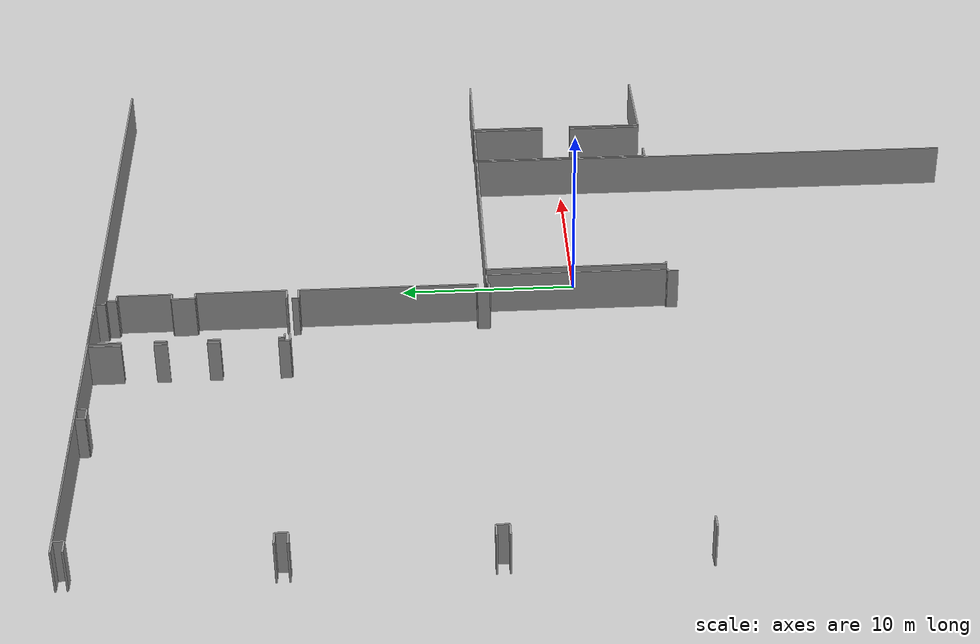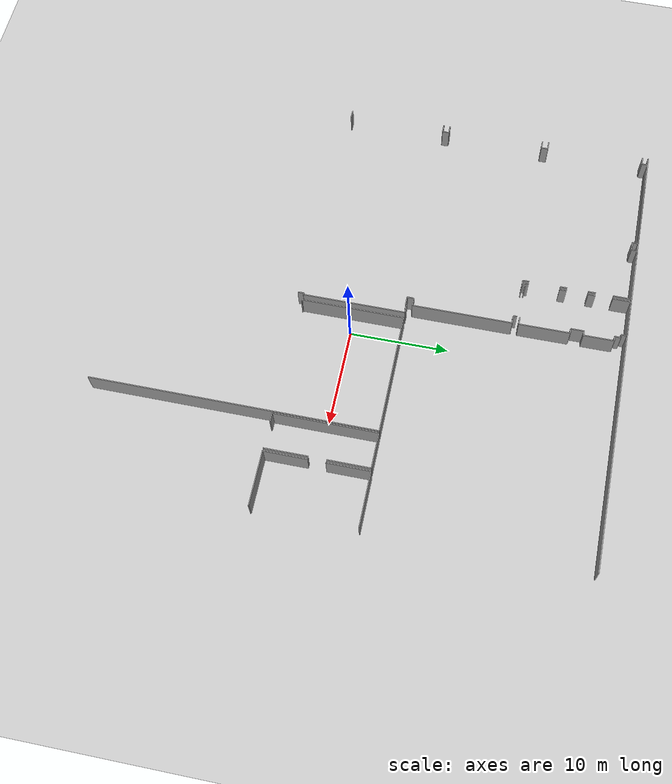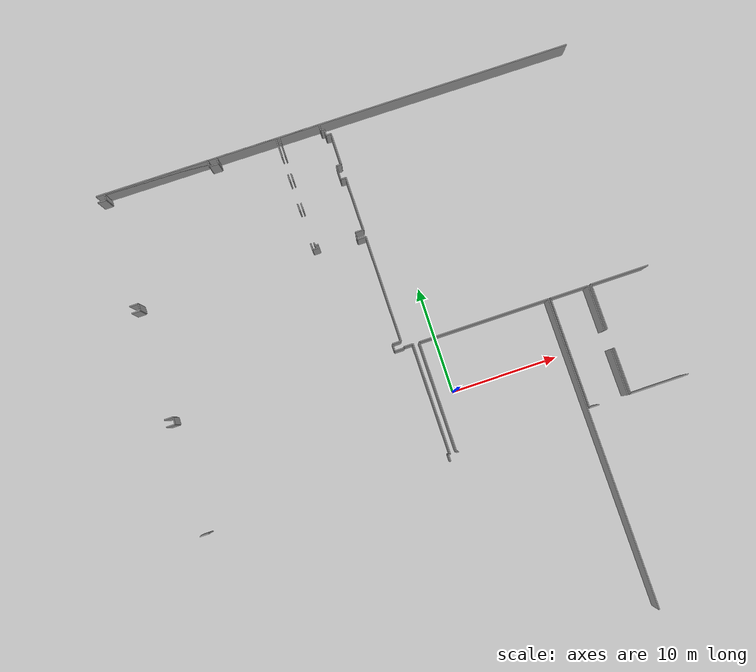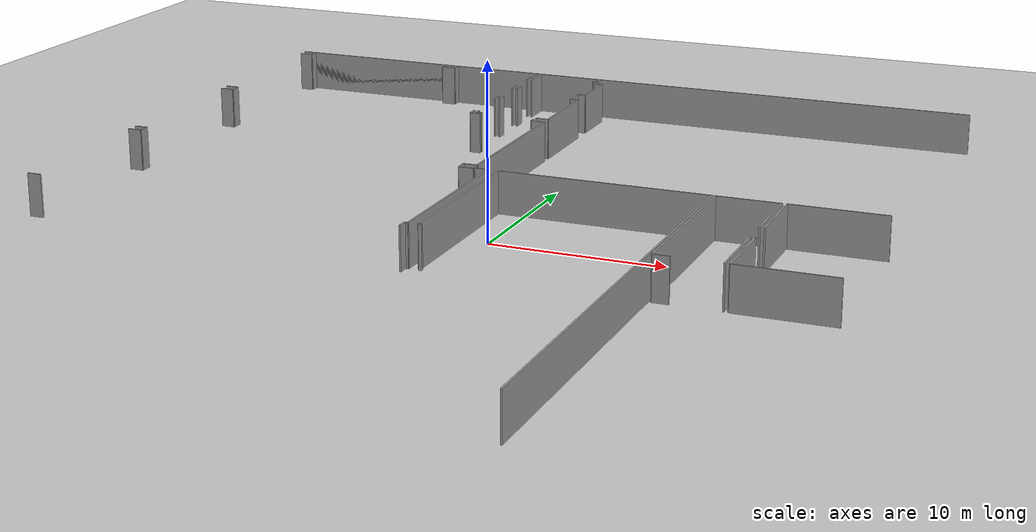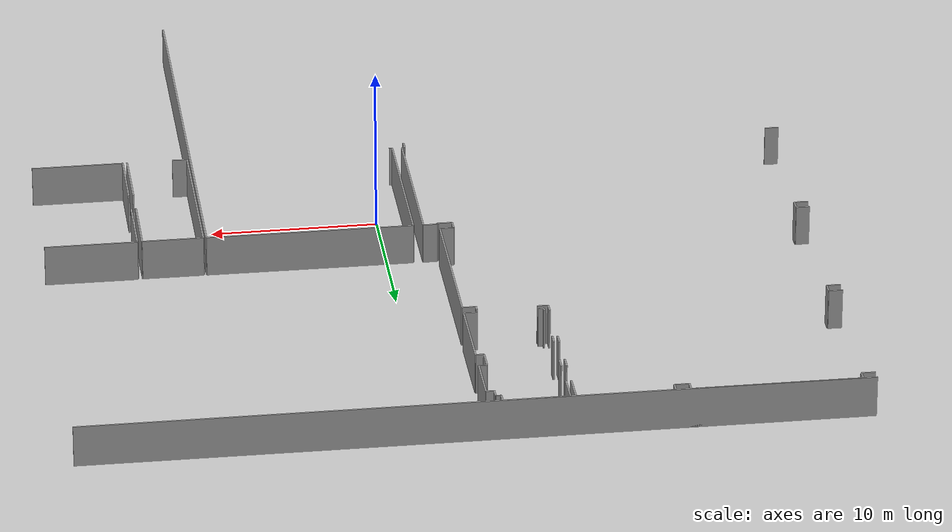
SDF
<sdf version="1.6">
 <world name="default">
  <model name="ground_plane">
   <static>1</static>
   <link name="link">
    <collision name="collision">
     <geometry><plane><normal>0 0 1</normal><size>100 100</size></plane></geometry>
     <surface><friction><ode><mu>100</mu><mu2>50</mu2></ode></friction></surface>
    </collision>
    <visual name="visual">
     <cast_shadows>0</cast_shadows>
     <geometry><plane><normal>0 0 1</normal><size>100 100</size></plane></geometry>
     <material>
      <script><uri>file://media/materials/scripts/gazebo.material</uri><name>Gazebo/Grey</name></script>
     </material>
    </visual>
   </link>
  </model>
  <model name="0510032323">
   <static>1</static>
   <link name="Wall_16">
    <collision name="Wall_16_Collision">
     <geometry><box><size>0.834660760409 0.1 2.5</size></box></geometry>
     <pose>0.417330380205 0 1.25 0 0 0</pose>
    </collision>
    <visual name="Wall_16_Visual">
     <pose>0.417330380205 0 1.25 0 0 0</pose>
     <geometry><box><size>0.834660760409 0.1 2.5</size></box></geometry>
     <material>
      <script><uri>file://media/materials/scripts/gazebo.material</uri><name>Gazebo/Grey</name></script>
      <ambient>1 1 1 1</ambient>
     </material>
    </visual>
    <pose>0.834660760409 -32.305280727 0 0 0 3.14159265359</pose>
   </link>
   <link name="Wall_17">
    <collision name="Wall_17_Collision">
     <geometry><box><size>0.822222081194 0.1 2.5</size></box></geometry>
     <pose>0.411111040597 0 1.25 0 0 0</pose>
    </collision>
    <visual name="Wall_17_Visual">
     <pose>0.411111040597 0 1.25 0 0 0</pose>
     <geometry><box><size>0.822222081194 0.1 2.5</size></box></geometry>
     <material>
      <script><uri>file://media/materials/scripts/gazebo.material</uri><name>Gazebo/Grey</name></script>
      <ambient>1 1 1 1</ambient>
     </material>
    </visual>
    <pose>0.0 -22.1937768526 0 0 0 0.0</pose>
   </link>
   <link name="Wall_18">
    <collision name="Wall_18_Collision">
     <geometry><box><size>0.681461925584 0.1 2.5</size></box></geometry>
     <pose>0.340730962792 0 1.25 0 0 0</pose>
    </collision>
    <visual name="Wall_18_Visual">
     <pose>0.340730962792 0 1.25 0 0 0</pose>
     <geometry><box><size>0.681461925584 0.1 2.5</size></box></geometry>
     <material>
      <script><uri>file://media/materials/scripts/gazebo.material</uri><name>Gazebo/Grey</name></script>
      <ambient>1 1 1 1</ambient>
     </material>
    </visual>
    <pose>0.822222081194 -22.1937768526 0 0 0 1.57079632679</pose>
   </link>
   <link name="Wall_19">
    <collision name="Wall_19_Collision">
     <geometry><box><size>0.807752597209 0.1 2.5</size></box></geometry>
     <pose>0.403876298604 0 1.25 0 0 0</pose>
    </collision>
    <visual name="Wall_19_Visual">
     <pose>0.403876298604 0 1.25 0 0 0</pose>
     <geometry><box><size>0.807752597209 0.1 2.5</size></box></geometry>
     <material>
      <script><uri>file://media/materials/scripts/gazebo.material</uri><name>Gazebo/Grey</name></script>
      <ambient>1 1 1 1</ambient>
     </material>
    </visual>
    <pose>0.822222081194 -21.512314927 0 0 0 3.14159265359</pose>
   </link>
   <link name="Wall_20">
    <collision name="Wall_20_Collision">
     <geometry><box><size>0.825395213647 0.1 2.5</size></box></geometry>
     <pose>0.412697606824 0 1.25 0 0 0</pose>
    </collision>
    <visual name="Wall_20_Visual">
     <pose>0.412697606824 0 1.25 0 0 0</pose>
     <geometry><box><size>0.825395213647 0.1 2.5</size></box></geometry>
     <material>
      <script><uri>file://media/materials/scripts/gazebo.material</uri><name>Gazebo/Grey</name></script>
      <ambient>1 1 1 1</ambient>
     </material>
    </visual>
    <pose>0.0144694839852 -11.3950994142 0 0 0 0.0</pose>
   </link>
   <link name="Wall_21">
    <collision name="Wall_21_Collision">
     <geometry><box><size>0.67498873538 0.1 2.5</size></box></geometry>
     <pose>0.33749436769 0 1.25 0 0 0</pose>
    </collision>
    <visual name="Wall_21_Visual">
     <pose>0.33749436769 0 1.25 0 0 0</pose>
     <geometry><box><size>0.67498873538 0.1 2.5</size></box></geometry>
     <material>
      <script><uri>file://media/materials/scripts/gazebo.material</uri><name>Gazebo/Grey</name></script>
      <ambient>1 1 1 1</ambient>
     </material>
    </visual>
    <pose>0.839864697632 -11.3950994142 0 0 0 1.57079632679</pose>
   </link>
   <link name="Wall_22">
    <collision name="Wall_22_Collision">
     <geometry><box><size>0.823110558281 0.1 2.5</size></box></geometry>
     <pose>0.41155527914 0 1.25 0 0 0</pose>
    </collision>
    <visual name="Wall_22_Visual">
     <pose>0.41155527914 0 1.25 0 0 0</pose>
     <geometry><box><size>0.823110558281 0.1 2.5</size></box></geometry>
     <material>
      <script><uri>file://media/materials/scripts/gazebo.material</uri><name>Gazebo/Grey</name></script>
      <ambient>1 1 1 1</ambient>
     </material>
    </visual>
    <pose>0.839864697632 -10.7201106789 0 0 0 3.14159265359</pose>
   </link>
   <link name="Wall_23">
    <collision name="Wall_23_Collision">
     <geometry><box><size>0.811814206749 0.1 2.5</size></box></geometry>
     <pose>0.405907103374 0 1.25 0 0 0</pose>
    </collision>
    <visual name="Wall_23_Visual">
     <pose>0.405907103374 0 1.25 0 0 0</pose>
     <geometry><box><size>0.811814206749 0.1 2.5</size></box></geometry>
     <material>
      <script><uri>file://media/materials/scripts/gazebo.material</uri><name>Gazebo/Grey</name></script>
      <ambient>1 1 1 1</ambient>
     </material>
    </visual>
    <pose>0.0167541393513 -0.599595108299 0 0 0 0.0</pose>
   </link>
   <link name="Wall_24">
    <collision name="Wall_24_Collision">
     <geometry><box><size>0.599595108299 0.1 2.5</size></box></geometry>
     <pose>0.29979755415 0 1.25 0 0 0</pose>
    </collision>
    <visual name="Wall_24_Visual">
     <pose>0.29979755415 0 1.25 0 0 0</pose>
     <geometry><box><size>0.599595108299 0.1 2.5</size></box></geometry>
     <material>
      <script><uri>file://media/materials/scripts/gazebo.material</uri><name>Gazebo/Grey</name></script>
      <ambient>1 1 1 1</ambient>
     </material>
    </visual>
    <pose>0.8285683461 -0.599595108299 0 0 0 1.57079632679</pose>
   </link>
   <link name="Wall_25">
    <collision name="Wall_25_Collision">
     <geometry><box><size>9.92885837041 0.1 2.5</size></box></geometry>
     <pose>4.9644291852 0 1.25 0 0 0</pose>
    </collision>
    <visual name="Wall_25_Visual">
     <pose>4.9644291852 0 1.25 0 0 0</pose>
     <geometry><box><size>9.92885837041 0.1 2.5</size></box></geometry>
     <material>
      <script><uri>file://media/materials/scripts/gazebo.material</uri><name>Gazebo/Grey</name></script>
      <ambient>1 1 1 1</ambient>
     </material>
    </visual>
    <pose>0.8285683461 -0.0 0 0 0 0.0</pose>
   </link>
   <link name="Wall_26">
    <collision name="Wall_26_Collision">
     <geometry><box><size>0.590456486835 0.1 2.5</size></box></geometry>
     <pose>0.295228243417 0 1.25 0 0 0</pose>
    </collision>
    <visual name="Wall_26_Visual">
     <pose>0.295228243417 0 1.25 0 0 0</pose>
     <geometry><box><size>0.590456486835 0.1 2.5</size></box></geometry>
     <material>
      <script><uri>file://media/materials/scripts/gazebo.material</uri><name>Gazebo/Grey</name></script>
      <ambient>1 1 1 1</ambient>
     </material>
    </visual>
    <pose>10.7574267165 -0.0 0 0 0 -1.57079632679</pose>
   </link>
   <link name="Wall_27">
    <collision name="Wall_27_Collision">
     <geometry><box><size>0.864995906659 0.1 2.5</size></box></geometry>
     <pose>0.43249795333 0 1.25 0 0 0</pose>
    </collision>
    <visual name="Wall_27_Visual">
     <pose>0.43249795333 0 1.25 0 0 0</pose>
     <geometry><box><size>0.864995906659 0.1 2.5</size></box></geometry>
     <material>
      <script><uri>file://media/materials/scripts/gazebo.material</uri><name>Gazebo/Grey</name></script>
      <ambient>1 1 1 1</ambient>
     </material>
    </visual>
    <pose>10.7574267165 -0.590456486835 0 0 0 0.0</pose>
   </link>
   <link name="Wall_28">
    <collision name="Wall_28_Collision">
     <geometry><box><size>0.587156429084 0.1 2.5</size></box></geometry>
     <pose>0.293578214542 0 1.25 0 0 0</pose>
    </collision>
    <visual name="Wall_28_Visual">
     <pose>0.293578214542 0 1.25 0 0 0</pose>
     <geometry><box><size>0.587156429084 0.1 2.5</size></box></geometry>
     <material>
      <script><uri>file://media/materials/scripts/gazebo.material</uri><name>Gazebo/Grey</name></script>
      <ambient>1 1 1 1</ambient>
     </material>
    </visual>
    <pose>11.6224226232 -0.590456486835 0 0 0 1.57079632679</pose>
   </link>
   <link name="Wall_29">
    <collision name="Wall_29_Collision">
     <geometry><box><size>5.74083123378 0.1 2.5</size></box></geometry>
     <pose>2.87041561689 0 1.25 0 0 0</pose>
    </collision>
    <visual name="Wall_29_Visual">
     <pose>2.87041561689 0 1.25 0 0 0</pose>
     <geometry><box><size>5.74083123378 0.1 2.5</size></box></geometry>
     <material>
      <script><uri>file://media/materials/scripts/gazebo.material</uri><name>Gazebo/Grey</name></script>
      <ambient>1 1 1 1</ambient>
     </material>
    </visual>
    <pose>11.6224226232 -0.00330005775101 0 0 0 0.0</pose>
   </link>
   <link name="Wall_30">
    <collision name="Wall_30_Collision">
     <geometry><box><size>1.83533981075 0.1 2.5</size></box></geometry>
     <pose>0.917669905377 0 1.25 0 0 0</pose>
    </collision>
    <visual name="Wall_30_Visual">
     <pose>0.917669905377 0 1.25 0 0 0</pose>
     <geometry><box><size>1.83533981075 0.1 2.5</size></box></geometry>
     <material>
      <script><uri>file://media/materials/scripts/gazebo.material</uri><name>Gazebo/Grey</name></script>
      <ambient>1 1 1 1</ambient>
     </material>
    </visual>
    <pose>17.3632538569 -0.00330005775101 0 0 0 -1.57079632679</pose>
   </link>
   <link name="Wall_31">
    <collision name="Wall_31_Collision">
     <geometry><box><size>0.759394058627 0.1 2.5</size></box></geometry>
     <pose>0.379697029313 0 1.25 0 0 0</pose>
    </collision>
    <visual name="Wall_31_Visual">
     <pose>0.379697029313 0 1.25 0 0 0</pose>
     <geometry><box><size>0.759394058627 0.1 2.5</size></box></geometry>
     <material>
      <script><uri>file://media/materials/scripts/gazebo.material</uri><name>Gazebo/Grey</name></script>
      <ambient>1 1 1 1</ambient>
     </material>
    </visual>
    <pose>17.3632538569 -3.61330938676 0 0 0 -1.57079632679</pose>
   </link>
   <link name="Wall_32">
    <collision name="Wall_32_Collision">
     <geometry><box><size>0.706466209313 0.1 2.5</size></box></geometry>
     <pose>0.353233104656 0 1.25 0 0 0</pose>
    </collision>
    <visual name="Wall_32_Visual">
     <pose>0.353233104656 0 1.25 0 0 0</pose>
     <geometry><box><size>0.706466209313 0.1 2.5</size></box></geometry>
     <material>
      <script><uri>file://media/materials/scripts/gazebo.material</uri><name>Gazebo/Grey</name></script>
      <ambient>1 1 1 1</ambient>
     </material>
    </visual>
    <pose>17.3632538569 -6.51685250646 0 0 0 -1.57079632679</pose>
   </link>
   <link name="Wall_33">
    <collision name="Wall_33_Collision">
     <geometry><box><size>0.624726317326 0.1 2.5</size></box></geometry>
     <pose>0.312363158663 0 1.25 0 0 0</pose>
    </collision>
    <visual name="Wall_33_Visual">
     <pose>0.312363158663 0 1.25 0 0 0</pose>
     <geometry><box><size>0.624726317326 0.1 2.5</size></box></geometry>
     <material>
      <script><uri>file://media/materials/scripts/gazebo.material</uri><name>Gazebo/Grey</name></script>
      <ambient>1 1 1 1</ambient>
     </material>
    </visual>
    <pose>17.3632538569 -10.3932780362 0 0 0 -1.57079632679</pose>
   </link>
   <link name="Wall_34">
    <collision name="Wall_34_Collision">
     <geometry><box><size>0.654934538278 0.1 2.5</size></box></geometry>
     <pose>0.327467269139 0 1.25 0 0 0</pose>
    </collision>
    <visual name="Wall_34_Visual">
     <pose>0.327467269139 0 1.25 0 0 0</pose>
     <geometry><box><size>0.654934538278 0.1 2.5</size></box></geometry>
     <material>
      <script><uri>file://media/materials/scripts/gazebo.material</uri><name>Gazebo/Grey</name></script>
      <ambient>1 1 1 1</ambient>
     </material>
    </visual>
    <pose>17.3632538569 -11.0180043535 0 0 0 0.0</pose>
   </link>
   <link name="Wall_35">
    <collision name="Wall_35_Collision">
     <geometry><box><size>0.370748795796 0.1 2.5</size></box></geometry>
     <pose>0.185374397898 0 1.25 0 0 0</pose>
    </collision>
    <visual name="Wall_35_Visual">
     <pose>0.185374397898 0 1.25 0 0 0</pose>
     <geometry><box><size>0.370748795796 0.1 2.5</size></box></geometry>
     <material>
      <script><uri>file://media/materials/scripts/gazebo.material</uri><name>Gazebo/Grey</name></script>
      <ambient>1 1 1 1</ambient>
     </material>
    </visual>
    <pose>21.5529310224 -11.0180043535 0 0 0 -1.57079632679</pose>
   </link>
   <link name="Wall_36">
    <collision name="Wall_36_Collision">
     <geometry><box><size>0.812829609134 0.1 2.5</size></box></geometry>
     <pose>0.406414804567 0 1.25 0 0 0</pose>
    </collision>
    <visual name="Wall_36_Visual">
     <pose>0.406414804567 0 1.25 0 0 0</pose>
     <geometry><box><size>0.812829609134 0.1 2.5</size></box></geometry>
     <material>
      <script><uri>file://media/materials/scripts/gazebo.material</uri><name>Gazebo/Grey</name></script>
      <ambient>1 1 1 1</ambient>
     </material>
    </visual>
    <pose>21.5529310224 -11.3887531493 0 0 0 0.0</pose>
   </link>
   <link name="Wall_37">
    <collision name="Wall_37_Collision">
     <geometry><box><size>10.1173424381 0.1 2.5</size></box></geometry>
     <pose>5.05867121905 0 1.25 0 0 0</pose>
    </collision>
    <visual name="Wall_37_Visual">
     <pose>5.05867121905 0 1.25 0 0 0</pose>
     <geometry><box><size>10.1173424381 0.1 2.5</size></box></geometry>
     <material>
      <script><uri>file://media/materials/scripts/gazebo.material</uri><name>Gazebo/Grey</name></script>
      <ambient>1 1 1 1</ambient>
     </material>
    </visual>
    <pose>22.3657606316 -11.3887531493 0 0 0 -1.57079632679</pose>
   </link>
   <link name="Wall_38">
    <collision name="Wall_38_Collision">
     <geometry><box><size>0.825902914839 0.1 2.5</size></box></geometry>
     <pose>0.41295145742 0 1.25 0 0 0</pose>
    </collision>
    <visual name="Wall_38_Visual">
     <pose>0.41295145742 0 1.25 0 0 0</pose>
     <geometry><box><size>0.825902914839 0.1 2.5</size></box></geometry>
     <material>
      <script><uri>file://media/materials/scripts/gazebo.material</uri><name>Gazebo/Grey</name></script>
      <ambient>1 1 1 1</ambient>
     </material>
    </visual>
    <pose>22.3657606316 -21.5060955874 0 0 0 3.14159265359</pose>
   </link>
   <link name="Wall_39">
    <collision name="Wall_39_Collision">
     <geometry><box><size>0.676004137765 0.1 2.5</size></box></geometry>
     <pose>0.338002068882 0 1.25 0 0 0</pose>
    </collision>
    <visual name="Wall_39_Visual">
     <pose>0.338002068882 0 1.25 0 0 0</pose>
     <geometry><box><size>0.676004137765 0.1 2.5</size></box></geometry>
     <material>
      <script><uri>file://media/materials/scripts/gazebo.material</uri><name>Gazebo/Grey</name></script>
      <ambient>1 1 1 1</ambient>
     </material>
    </visual>
    <pose>21.5398577167 -21.5060955874 0 0 0 -1.57079632679</pose>
   </link>
   <link name="Wall_40">
    <collision name="Wall_40_Collision">
     <geometry><box><size>0.893046397543 0.1 2.5</size></box></geometry>
     <pose>0.446523198771 0 1.25 0 0 0</pose>
    </collision>
    <visual name="Wall_40_Visual">
     <pose>0.446523198771 0 1.25 0 0 0</pose>
     <geometry><box><size>0.893046397543 0.1 2.5</size></box></geometry>
     <material>
      <script><uri>file://media/materials/scripts/gazebo.material</uri><name>Gazebo/Grey</name></script>
      <ambient>1 1 1 1</ambient>
     </material>
    </visual>
    <pose>21.5398577167 -22.1820997252 0 0 0 0.0</pose>
   </link>
   <link name="Wall_41">
    <collision name="Wall_41_Collision">
     <geometry><box><size>0.100144060213 0.1 2.5</size></box></geometry>
     <pose>0.0500720301067 0 1.25 0 0 0</pose>
    </collision>
    <visual name="Wall_41_Visual">
     <pose>0.0500720301067 0 1.25 0 0 0</pose>
     <geometry><box><size>0.100144060213 0.1 2.5</size></box></geometry>
     <material>
      <script><uri>file://media/materials/scripts/gazebo.material</uri><name>Gazebo/Grey</name></script>
      <ambient>1 1 1 1</ambient>
     </material>
    </visual>
    <pose>22.4329041143 -22.1820997252 0 0 0 1.57079632679</pose>
   </link>
   <link name="Wall_42">
    <collision name="Wall_42_Collision">
     <geometry><box><size>0.85953811884 0.1 2.5</size></box></geometry>
     <pose>0.42976905942 0 1.25 0 0 0</pose>
    </collision>
    <visual name="Wall_42_Visual">
     <pose>0.42976905942 0 1.25 0 0 0</pose>
     <geometry><box><size>0.85953811884 0.1 2.5</size></box></geometry>
     <material>
      <script><uri>file://media/materials/scripts/gazebo.material</uri><name>Gazebo/Grey</name></script>
      <ambient>1 1 1 1</ambient>
     </material>
    </visual>
    <pose>22.4329041143 -22.081955665 0 0 0 0.0</pose>
   </link>
   <link name="Wall_43">
    <collision name="Wall_43_Collision">
     <geometry><box><size>10.4068590431 0.1 2.5</size></box></geometry>
     <pose>5.20342952156 0 1.25 0 0 0</pose>
    </collision>
    <visual name="Wall_43_Visual">
     <pose>5.20342952156 0 1.25 0 0 0</pose>
     <geometry><box><size>10.4068590431 0.1 2.5</size></box></geometry>
     <material>
      <script><uri>file://media/materials/scripts/gazebo.material</uri><name>Gazebo/Grey</name></script>
      <ambient>1 1 1 1</ambient>
     </material>
    </visual>
    <pose>23.2924422331 -22.081955665 0 0 0 -1.57079632679</pose>
   </link>
   <link name="Wall_44">
    <collision name="Wall_44_Collision">
     <geometry><box><size>0.175283836698 0.1 2.5</size></box></geometry>
     <pose>0.087641918349 0 1.25 0 0 0</pose>
    </collision>
    <visual name="Wall_44_Visual">
     <pose>0.087641918349 0 1.25 0 0 0</pose>
     <geometry><box><size>0.175283836698 0.1 2.5</size></box></geometry>
     <material>
      <script><uri>file://media/materials/scripts/gazebo.material</uri><name>Gazebo/Grey</name></script>
      <ambient>1 1 1 1</ambient>
     </material>
    </visual>
    <pose>23.2924422331 -32.4888147081 0 0 0 3.14159265359</pose>
   </link>
   <link name="Wall_45">
    <collision name="Wall_45_Collision">
     <geometry><box><size>0.625995570307 0.1 2.5</size></box></geometry>
     <pose>0.312997785154 0 1.25 0 0 0</pose>
    </collision>
    <visual name="Wall_45_Visual">
     <pose>0.312997785154 0 1.25 0 0 0</pose>
     <geometry><box><size>0.625995570307 0.1 2.5</size></box></geometry>
     <material>
      <script><uri>file://media/materials/scripts/gazebo.material</uri><name>Gazebo/Grey</name></script>
      <ambient>1 1 1 1</ambient>
     </material>
    </visual>
    <pose>23.1171583964 -32.4888147081 0 0 0 -1.57079632679</pose>
   </link>
   <link name="Wall_52">
    <collision name="Wall_52_Collision">
     <geometry><box><size>0.814098862115 0.1 2.5</size></box></geometry>
     <pose>0.407049431057 0 1.25 0 0 0</pose>
    </collision>
    <visual name="Wall_52_Visual">
     <pose>0.407049431057 0 1.25 0 0 0</pose>
     <geometry><box><size>0.814098862115 0.1 2.5</size></box></geometry>
     <material>
      <script><uri>file://media/materials/scripts/gazebo.material</uri><name>Gazebo/Grey</name></script>
      <ambient>1 1 1 1</ambient>
     </material>
    </visual>
    <pose>22.3661414075 -10.7152875175 0 0 0 3.14159265359</pose>
   </link>
   <link name="Wall_53">
    <collision name="Wall_53_Collision">
     <geometry><box><size>0.328228820927 0.1 2.5</size></box></geometry>
     <pose>0.164114410464 0 1.25 0 0 0</pose>
    </collision>
    <visual name="Wall_53_Visual">
     <pose>0.164114410464 0 1.25 0 0 0</pose>
     <geometry><box><size>0.328228820927 0.1 2.5</size></box></geometry>
     <material>
      <script><uri>file://media/materials/scripts/gazebo.material</uri><name>Gazebo/Grey</name></script>
      <ambient>1 1 1 1</ambient>
     </material>
    </visual>
    <pose>17.9992765258 -10.7152875175 0 0 0 3.14159265359</pose>
   </link>
   <link name="Wall_54">
    <collision name="Wall_54_Collision">
     <geometry><box><size>0.315663216414 0.1 2.5</size></box></geometry>
     <pose>0.157831608207 0 1.25 0 0 0</pose>
    </collision>
    <visual name="Wall_54_Visual">
     <pose>0.157831608207 0 1.25 0 0 0</pose>
     <geometry><box><size>0.315663216414 0.1 2.5</size></box></geometry>
     <material>
      <script><uri>file://media/materials/scripts/gazebo.material</uri><name>Gazebo/Grey</name></script>
      <ambient>1 1 1 1</ambient>
     </material>
    </visual>
    <pose>17.6710477049 -10.7152875175 0 0 0 1.57079632679</pose>
   </link>
   <link name="Wall_55">
    <collision name="Wall_55_Collision">
     <geometry><box><size>0.706212358716 0.1 2.5</size></box></geometry>
     <pose>0.353106179358 0 1.25 0 0 0</pose>
    </collision>
    <visual name="Wall_55_Visual">
     <pose>0.353106179358 0 1.25 0 0 0</pose>
     <geometry><box><size>0.706212358716 0.1 2.5</size></box></geometry>
     <material>
      <script><uri>file://media/materials/scripts/gazebo.material</uri><name>Gazebo/Grey</name></script>
      <ambient>1 1 1 1</ambient>
     </material>
    </visual>
    <pose>17.6710477049 -7.23778819976 0 0 0 1.57079632679</pose>
   </link>
   <link name="Wall_56">
    <collision name="Wall_56_Collision">
     <geometry><box><size>0.731978194234 0.1 2.5</size></box></geometry>
     <pose>0.365989097117 0 1.25 0 0 0</pose>
    </collision>
    <visual name="Wall_56_Visual">
     <pose>0.365989097117 0 1.25 0 0 0</pose>
     <geometry><box><size>0.731978194234 0.1 2.5</size></box></geometry>
     <material>
      <script><uri>file://media/materials/scripts/gazebo.material</uri><name>Gazebo/Grey</name></script>
      <ambient>1 1 1 1</ambient>
     </material>
    </visual>
    <pose>17.6710477049 -4.33526048244 0 0 0 1.57079632679</pose>
   </link>
   <link name="Wall_57">
    <collision name="Wall_57_Collision">
     <geometry><box><size>1.82353575803 0.1 2.5</size></box></geometry>
     <pose>0.911767879015 0 1.25 0 0 0</pose>
    </collision>
    <visual name="Wall_57_Visual">
     <pose>0.911767879015 0 1.25 0 0 0</pose>
     <geometry><box><size>1.82353575803 0.1 2.5</size></box></geometry>
     <material>
      <script><uri>file://media/materials/scripts/gazebo.material</uri><name>Gazebo/Grey</name></script>
      <ambient>1 1 1 1</ambient>
     </material>
    </visual>
    <pose>17.6710477049 -1.83698983963 0 0 0 1.57079632679</pose>
   </link>
   <link name="Wall_58">
    <collision name="Wall_58_Collision">
     <geometry><box><size>3.88099484049 0.1 2.5</size></box></geometry>
     <pose>1.94049742024 0 1.25 0 0 0</pose>
    </collision>
    <visual name="Wall_58_Visual">
     <pose>1.94049742024 0 1.25 0 0 0</pose>
     <geometry><box><size>3.88099484049 0.1 2.5</size></box></geometry>
     <material>
      <script><uri>file://media/materials/scripts/gazebo.material</uri><name>Gazebo/Grey</name></script>
      <ambient>1 1 1 1</ambient>
     </material>
    </visual>
    <pose>17.6710477049 -0.0134540816003 0 0 0 0.0</pose>
   </link>
   <link name="Wall_59">
    <collision name="Wall_59_Collision">
     <geometry><box><size>0.573448496887 0.1 2.5</size></box></geometry>
     <pose>0.286724248444 0 1.25 0 0 0</pose>
    </collision>
    <visual name="Wall_59_Visual">
     <pose>0.286724248444 0 1.25 0 0 0</pose>
     <geometry><box><size>0.573448496887 0.1 2.5</size></box></geometry>
     <material>
      <script><uri>file://media/materials/scripts/gazebo.material</uri><name>Gazebo/Grey</name></script>
      <ambient>1 1 1 1</ambient>
     </material>
    </visual>
    <pose>21.5520425454 -0.0134540816003 0 0 0 -1.57079632679</pose>
   </link>
   <link name="Wall_60">
    <collision name="Wall_60_Collision">
     <geometry><box><size>0.315536291116 0.1 2.5</size></box></geometry>
     <pose>0.157768145558 0 1.25 0 0 0</pose>
    </collision>
    <visual name="Wall_60_Visual">
     <pose>0.157768145558 0 1.25 0 0 0</pose>
     <geometry><box><size>0.315536291116 0.1 2.5</size></box></geometry>
     <material>
      <script><uri>file://media/materials/scripts/gazebo.material</uri><name>Gazebo/Grey</name></script>
      <ambient>1 1 1 1</ambient>
     </material>
    </visual>
    <pose>21.5520425454 -0.586902578487 0 0 0 0.0</pose>
   </link>
   <link name="Wall_61">
    <collision name="Wall_61_Collision">
     <geometry><box><size>0.591344963921 0.1 2.5</size></box></geometry>
     <pose>0.295672481961 0 1.25 0 0 0</pose>
    </collision>
    <visual name="Wall_61_Visual">
     <pose>0.295672481961 0 1.25 0 0 0</pose>
     <geometry><box><size>0.591344963921 0.1 2.5</size></box></geometry>
     <material>
      <script><uri>file://media/materials/scripts/gazebo.material</uri><name>Gazebo/Grey</name></script>
      <ambient>1 1 1 1</ambient>
     </material>
    </visual>
    <pose>21.8675788365 -0.586902578487 0 0 0 -1.57079632679</pose>
   </link>
   <link name="Wall_62">
    <collision name="Wall_62_Collision">
     <geometry><box><size>0.476350643829 0.1 2.5</size></box></geometry>
     <pose>0.238175321914 0 1.25 0 0 0</pose>
    </collision>
    <visual name="Wall_62_Visual">
     <pose>0.238175321914 0 1.25 0 0 0</pose>
     <geometry><box><size>0.476350643829 0.1 2.5</size></box></geometry>
     <material>
      <script><uri>file://media/materials/scripts/gazebo.material</uri><name>Gazebo/Grey</name></script>
      <ambient>1 1 1 1</ambient>
     </material>
    </visual>
    <pose>21.8675788365 -1.17824754241 0 0 0 0.0</pose>
   </link>
   <link name="Wall_63">
    <collision name="Wall_63_Collision">
     <geometry><box><size>3.06930755904 0.1 2.5</size></box></geometry>
     <pose>1.53465377952 0 1.25 0 0 0</pose>
    </collision>
    <visual name="Wall_63_Visual">
     <pose>1.53465377952 0 1.25 0 0 0</pose>
     <geometry><box><size>3.06930755904 0.1 2.5</size></box></geometry>
     <material>
      <script><uri>file://media/materials/scripts/gazebo.material</uri><name>Gazebo/Grey</name></script>
      <ambient>1 1 1 1</ambient>
     </material>
    </visual>
    <pose>22.3439294803 -1.17824754241 0 0 0 -1.57079632679</pose>
   </link>
   <link name="Wall_64">
    <collision name="Wall_64_Collision">
     <geometry><box><size>0.482189207542 0.1 2.5</size></box></geometry>
     <pose>0.241094603771 0 1.25 0 0 0</pose>
    </collision>
    <visual name="Wall_64_Visual">
     <pose>0.241094603771 0 1.25 0 0 0</pose>
     <geometry><box><size>0.482189207542 0.1 2.5</size></box></geometry>
     <material>
      <script><uri>file://media/materials/scripts/gazebo.material</uri><name>Gazebo/Grey</name></script>
      <ambient>1 1 1 1</ambient>
     </material>
    </visual>
    <pose>22.3439294803 -4.24755510145 0 0 0 3.14159265359</pose>
   </link>
   <link name="Wall_65">
    <collision name="Wall_65_Collision">
     <geometry><box><size>1.31989617511 0.1 2.5</size></box></geometry>
     <pose>0.659948087553 0 1.25 0 0 0</pose>
    </collision>
    <visual name="Wall_65_Visual">
     <pose>0.659948087553 0 1.25 0 0 0</pose>
     <geometry><box><size>1.31989617511 0.1 2.5</size></box></geometry>
     <material>
      <script><uri>file://media/materials/scripts/gazebo.material</uri><name>Gazebo/Grey</name></script>
      <ambient>1 1 1 1</ambient>
     </material>
    </visual>
    <pose>21.8617402728 -4.24755510145 0 0 0 -1.57079632679</pose>
   </link>
   <link name="Wall_66">
    <collision name="Wall_66_Collision">
     <geometry><box><size>0.48840854715 0.1 2.5</size></box></geometry>
     <pose>0.244204273575 0 1.25 0 0 0</pose>
    </collision>
    <visual name="Wall_66_Visual">
     <pose>0.244204273575 0 1.25 0 0 0</pose>
     <geometry><box><size>0.48840854715 0.1 2.5</size></box></geometry>
     <material>
      <script><uri>file://media/materials/scripts/gazebo.material</uri><name>Gazebo/Grey</name></script>
      <ambient>1 1 1 1</ambient>
     </material>
    </visual>
    <pose>21.8617402728 -5.56745127655 0 0 0 0.0</pose>
   </link>
   <link name="Wall_67">
    <collision name="Wall_67_Collision">
     <geometry><box><size>5.1478610827 0.1 2.5</size></box></geometry>
     <pose>2.57393054135 0 1.25 0 0 0</pose>
    </collision>
    <visual name="Wall_67_Visual">
     <pose>2.57393054135 0 1.25 0 0 0</pose>
     <geometry><box><size>5.1478610827 0.1 2.5</size></box></geometry>
     <material>
      <script><uri>file://media/materials/scripts/gazebo.material</uri><name>Gazebo/Grey</name></script>
      <ambient>1 1 1 1</ambient>
     </material>
    </visual>
    <pose>22.3501488199 -5.56745127655 0 0 0 -1.56768967473</pose>
   </link>
   <link name="Wall_68">
    <collision name="Wall_68_Collision">
     <geometry><box><size>5.52620055466 0.1 2.5</size></box></geometry>
     <pose>2.76310027733 0 1.25 0 0 0</pose>
    </collision>
    <visual name="Wall_68_Visual">
     <pose>2.76310027733 0 1.25 0 0 0</pose>
     <geometry><box><size>5.52620055466 0.1 2.5</size></box></geometry>
     <material>
      <script><uri>file://media/materials/scripts/gazebo.material</uri><name>Gazebo/Grey</name></script>
      <ambient>1 1 1 1</ambient>
     </material>
    </visual>
    <pose>45.9020263624 -22.0586014101 0 0 0 3.14159265359</pose>
   </link>
   <link name="Wall_69">
    <collision name="Wall_69_Collision">
     <geometry><box><size>4.36305712273 0.1 2.5</size></box></geometry>
     <pose>2.18152856137 0 1.25 0 0 0</pose>
    </collision>
    <visual name="Wall_69_Visual">
     <pose>2.18152856137 0 1.25 0 0 0</pose>
     <geometry><box><size>4.36305712273 0.1 2.5</size></box></geometry>
     <material>
      <script><uri>file://media/materials/scripts/gazebo.material</uri><name>Gazebo/Grey</name></script>
      <ambient>1 1 1 1</ambient>
     </material>
    </visual>
    <pose>40.3758258077 -22.0586014101 0 0 0 -1.57079632679</pose>
   </link>
   <link name="Wall_70">
    <collision name="Wall_70_Collision">
     <geometry><box><size>4.36686488167 0.1 2.5</size></box></geometry>
     <pose>2.18343244084 0 1.25 0 0 0</pose>
    </collision>
    <visual name="Wall_70_Visual">
     <pose>2.18343244084 0 1.25 0 0 0</pose>
     <geometry><box><size>4.36686488167 0.1 2.5</size></box></geometry>
     <material>
      <script><uri>file://media/materials/scripts/gazebo.material</uri><name>Gazebo/Grey</name></script>
      <ambient>1 1 1 1</ambient>
     </material>
    </visual>
    <pose>40.3758258077 -28.1634543989 0 0 0 -1.57079632679</pose>
   </link>
   <link name="Wall_71">
    <collision name="Wall_71_Collision">
     <geometry><box><size>5.52620919679 0.1 2.5</size></box></geometry>
     <pose>2.7631045984 0 1.25 0 0 0</pose>
    </collision>
    <visual name="Wall_71_Visual">
     <pose>2.7631045984 0 1.25 0 0 0</pose>
     <geometry><box><size>5.52620919679 0.1 2.5</size></box></geometry>
     <material>
      <script><uri>file://media/materials/scripts/gazebo.material</uri><name>Gazebo/Grey</name></script>
      <ambient>1 1 1 1</ambient>
     </material>
    </visual>
    <pose>40.3758258077 -32.5303192806 0 0 0 0.00176852752068</pose>
   </link>
   <link name="Wall_73">
    <collision name="Wall_73_Collision">
     <geometry><box><size>0.9161468018 0.1 2.5</size></box></geometry>
     <pose>0.4580734009 0 1.25 0 0 0</pose>
    </collision>
    <visual name="Wall_73_Visual">
     <pose>0.4580734009 0 1.25 0 0 0</pose>
     <geometry><box><size>0.9161468018 0.1 2.5</size></box></geometry>
     <material>
      <script><uri>file://media/materials/scripts/gazebo.material</uri><name>Gazebo/Grey</name></script>
      <ambient>1 1 1 1</ambient>
     </material>
    </visual>
    <pose>37.3622384546 -32.5487234488 0 0 0 3.14159265359</pose>
   </link>
   <link name="Wall_74">
    <collision name="Wall_74_Collision">
     <geometry><box><size>10.4558522082 0.1 2.5</size></box></geometry>
     <pose>5.22792610409 0 1.25 0 0 0</pose>
    </collision>
    <visual name="Wall_74_Visual">
     <pose>5.22792610409 0 1.25 0 0 0</pose>
     <geometry><box><size>10.4558522082 0.1 2.5</size></box></geometry>
     <material>
      <script><uri>file://media/materials/scripts/gazebo.material</uri><name>Gazebo/Grey</name></script>
      <ambient>1 1 1 1</ambient>
     </material>
    </visual>
    <pose>36.4460916528 -32.5487234488 0 0 0 1.57079632679</pose>
   </link>
   <link name="Wall_75">
    <collision name="Wall_75_Collision">
     <geometry><box><size>3.65227545328 0.1 2.5</size></box></geometry>
     <pose>1.82613772664 0 1.25 0 0 0</pose>
    </collision>
    <visual name="Wall_75_Visual">
     <pose>1.82613772664 0 1.25 0 0 0</pose>
     <geometry><box><size>3.65227545328 0.1 2.5</size></box></geometry>
     <material>
      <script><uri>file://media/materials/scripts/gazebo.material</uri><name>Gazebo/Grey</name></script>
      <ambient>1 1 1 1</ambient>
     </material>
    </visual>
    <pose>36.4460916528 -22.0928712406 0 0 0 0.0</pose>
   </link>
   <link name="Wall_76">
    <collision name="Wall_76_Collision">
     <geometry><box><size>4.32510645859 0.1 2.5</size></box></geometry>
     <pose>2.1625532293 0 1.25 0 0 0</pose>
    </collision>
    <visual name="Wall_76_Visual">
     <pose>2.1625532293 0 1.25 0 0 0</pose>
     <geometry><box><size>4.32510645859 0.1 2.5</size></box></geometry>
     <material>
      <script><uri>file://media/materials/scripts/gazebo.material</uri><name>Gazebo/Grey</name></script>
      <ambient>1 1 1 1</ambient>
     </material>
    </visual>
    <pose>40.098367106 -22.0928712406 0 0 0 -1.57079632679</pose>
   </link>
   <link name="Wall_77">
    <collision name="Wall_77_Collision">
     <geometry><box><size>4.37450349758 0.1 2.5</size></box></geometry>
     <pose>2.18725174879 0 1.25 0 0 0</pose>
    </collision>
    <visual name="Wall_77_Visual">
     <pose>2.18725174879 0 1.25 0 0 0</pose>
     <geometry><box><size>4.37450349758 0.1 2.5</size></box></geometry>
     <material>
      <script><uri>file://media/materials/scripts/gazebo.material</uri><name>Gazebo/Grey</name></script>
      <ambient>1 1 1 1</ambient>
     </material>
    </visual>
    <pose>40.098367106 -28.1742430493 0 0 0 -1.56754666465</pose>
   </link>
   <link name="Wall_110">
    <collision name="Wall_110_Collision">
     <geometry><box><size>0.186072487038 0.1 2.5</size></box></geometry>
     <pose>0.0930362435189 0 1.25 0 0 0</pose>
    </collision>
    <visual name="Wall_110_Visual">
     <pose>0.0930362435189 0 1.25 0 0 0</pose>
     <geometry><box><size>0.186072487038 0.1 2.5</size></box></geometry>
     <material>
      <script><uri>file://media/materials/scripts/gazebo.material</uri><name>Gazebo/Grey</name></script>
      <ambient>1 1 1 1</ambient>
     </material>
    </visual>
    <pose>24.0743020695 -32.4985879561 0 0 0 3.14159265359</pose>
   </link>
   <link name="Wall_111">
    <collision name="Wall_111_Collision">
     <geometry><box><size>10.4057167154 0.1 2.5</size></box></geometry>
     <pose>5.20285835771 0 1.25 0 0 0</pose>
    </collision>
    <visual name="Wall_111_Visual">
     <pose>5.20285835771 0 1.25 0 0 0</pose>
     <geometry><box><size>10.4057167154 0.1 2.5</size></box></geometry>
     <material>
      <script><uri>file://media/materials/scripts/gazebo.material</uri><name>Gazebo/Grey</name></script>
      <ambient>1 1 1 1</ambient>
     </material>
    </visual>
    <pose>23.8882295825 -32.4985879561 0 0 0 1.57079632679</pose>
   </link>
   <link name="Wall_112">
    <collision name="Wall_112_Collision">
     <geometry><box><size>12.3819436071 0.1 2.5</size></box></geometry>
     <pose>6.19097180355 0 1.25 0 0 0</pose>
    </collision>
    <visual name="Wall_112_Visual">
     <pose>6.19097180355 0 1.25 0 0 0</pose>
     <geometry><box><size>12.3819436071 0.1 2.5</size></box></geometry>
     <material>
      <script><uri>file://media/materials/scripts/gazebo.material</uri><name>Gazebo/Grey</name></script>
      <ambient>1 1 1 1</ambient>
     </material>
    </visual>
    <pose>23.8882295825 -22.0928712406 0 0 0 0.0</pose>
   </link>
   <link name="Wall_113">
    <collision name="Wall_113_Collision">
     <geometry><box><size>28.9564836615 0.1 2.5</size></box></geometry>
     <pose>14.4782418308 0 1.25 0 0 0</pose>
    </collision>
    <visual name="Wall_113_Visual">
     <pose>14.4782418308 0 1.25 0 0 0</pose>
     <geometry><box><size>28.9564836615 0.1 2.5</size></box></geometry>
     <material>
      <script><uri>file://media/materials/scripts/gazebo.material</uri><name>Gazebo/Grey</name></script>
      <ambient>1 1 1 1</ambient>
     </material>
    </visual>
    <pose>36.2701731896 -22.0928712406 0 0 0 -1.57079632679</pose>
   </link>
   <link name="Wall_118">
    <collision name="Wall_118_Collision">
     <geometry><box><size>45.9020263624 0.1 2.5</size></box></geometry>
     <pose>22.9510131812 0 1.25 0 0 0</pose>
    </collision>
    <visual name="Wall_118_Visual">
     <pose>22.9510131812 0 1.25 0 0 0</pose>
     <geometry><box><size>45.9020263624 0.1 2.5</size></box></geometry>
     <material>
      <script><uri>file://media/materials/scripts/gazebo.material</uri><name>Gazebo/Grey</name></script>
      <ambient>1 1 1 1</ambient>
     </material>
    </visual>
   </link>
   <pose>-25.5 27.2673348226 0 0 0 0</pose>
  </model>
 </world>
</sdf>
